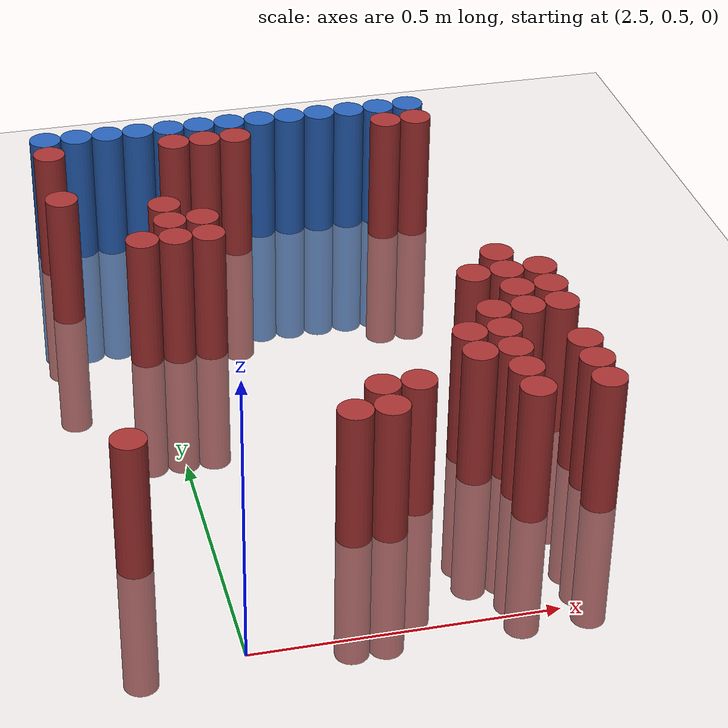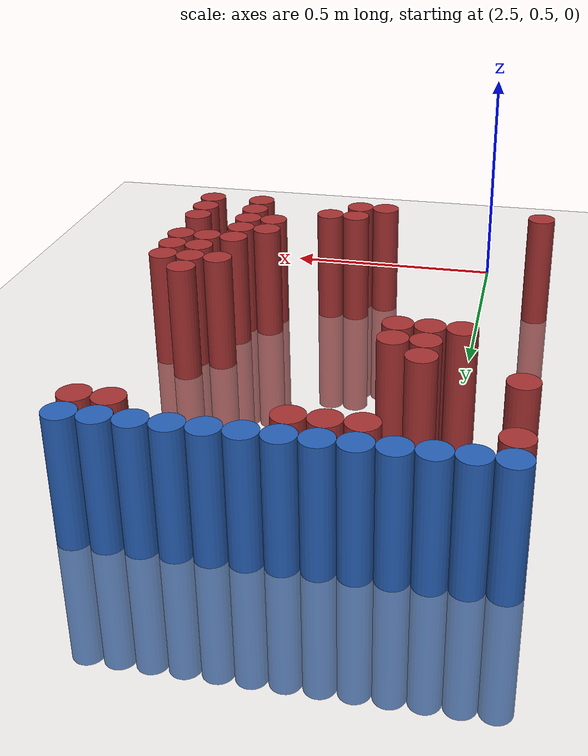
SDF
<sdf version="1.6">
 <world name="default">
  <model name="ground_plane">
   <static>1</static>
   <link name="link">
    <collision name="collision">
     <geometry><plane><normal>0 0 1</normal><size>100 100</size></plane></geometry>
     <surface><friction><ode><mu>100</mu><mu2>50</mu2></ode></friction></surface>
    </collision>
    <visual name="visual">
     <cast_shadows>0</cast_shadows>
     <geometry><plane><normal>0 0 1</normal><size>100 100</size></plane></geometry>
     <material>
      <script><uri>file://media/materials/scripts/gazebo.material</uri><name>Gazebo/Grey</name></script>
     </material>
    </visual>
   </link>
  </model>
  <model name="unit_cylinder_100">
   <static>1</static>
   <pose>2.370000 1.770000 0.000000 0.000000 0.000000 0.000000</pose>
   <link name="link">
    <inertial>
     <mass>1</mass>
     <inertia><ixx>0.145833</ixx><ixy>0</ixy><ixz>0</ixz><iyy>0.145833</iyy><iyz>0</iyz><izz>0.125</izz></inertia>
    </inertial>
    <collision name="collision">
     <geometry><cylinder><radius>0.030000</radius><length>0.5</length></cylinder></geometry>
    </collision>
    <visual name="visual">
     <geometry><cylinder><radius>0.030000</radius><length>0.5</length></cylinder></geometry>
     <material>
      <ambient>0.152000 0.379000 0.720000 1</ambient>
      <diffuse>0.152000 0.379000 0.720000 1</diffuse>
     </material>
     <material>
      <script><name>Gazebo/Grey</name><uri>file://media/materials/scripts/gazebo.material</uri></script>
     </material>
    </visual>
   </link>
  </model>
  <model name="unit_cylinder_101">
   <static>1</static>
   <pose>2.430000 1.770000 0.000000 0.000000 0.000000 0.000000</pose>
   <link name="link">
    <inertial>
     <mass>1</mass>
     <inertia><ixx>0.145833</ixx><ixy>0</ixy><ixz>0</ixz><iyy>0.145833</iyy><iyz>0</iyz><izz>0.125</izz></inertia>
    </inertial>
    <collision name="collision">
     <geometry><cylinder><radius>0.030000</radius><length>0.5</length></cylinder></geometry>
    </collision>
    <visual name="visual">
     <geometry><cylinder><radius>0.030000</radius><length>0.5</length></cylinder></geometry>
     <material>
      <ambient>0.152000 0.379000 0.720000 1</ambient>
      <diffuse>0.152000 0.379000 0.720000 1</diffuse>
     </material>
     <material>
      <script><name>Gazebo/Grey</name><uri>file://media/materials/scripts/gazebo.material</uri></script>
     </material>
    </visual>
   </link>
  </model>
  <model name="unit_cylinder_102">
   <static>1</static>
   <pose>2.490000 1.770000 0.000000 0.000000 0.000000 0.000000</pose>
   <link name="link">
    <inertial>
     <mass>1</mass>
     <inertia><ixx>0.145833</ixx><ixy>0</ixy><ixz>0</ixz><iyy>0.145833</iyy><iyz>0</iyz><izz>0.125</izz></inertia>
    </inertial>
    <collision name="collision">
     <geometry><cylinder><radius>0.030000</radius><length>0.5</length></cylinder></geometry>
    </collision>
    <visual name="visual">
     <geometry><cylinder><radius>0.030000</radius><length>0.5</length></cylinder></geometry>
     <material>
      <ambient>0.152000 0.379000 0.720000 1</ambient>
      <diffuse>0.152000 0.379000 0.720000 1</diffuse>
     </material>
     <material>
      <script><name>Gazebo/Grey</name><uri>file://media/materials/scripts/gazebo.material</uri></script>
     </material>
    </visual>
   </link>
  </model>
  <model name="unit_cylinder_103">
   <static>1</static>
   <pose>2.550000 1.770000 0.000000 0.000000 0.000000 0.000000</pose>
   <link name="link">
    <inertial>
     <mass>1</mass>
     <inertia><ixx>0.145833</ixx><ixy>0</ixy><ixz>0</ixz><iyy>0.145833</iyy><iyz>0</iyz><izz>0.125</izz></inertia>
    </inertial>
    <collision name="collision">
     <geometry><cylinder><radius>0.030000</radius><length>0.5</length></cylinder></geometry>
    </collision>
    <visual name="visual">
     <geometry><cylinder><radius>0.030000</radius><length>0.5</length></cylinder></geometry>
     <material>
      <ambient>0.152000 0.379000 0.720000 1</ambient>
      <diffuse>0.152000 0.379000 0.720000 1</diffuse>
     </material>
     <material>
      <script><name>Gazebo/Grey</name><uri>file://media/materials/scripts/gazebo.material</uri></script>
     </material>
    </visual>
   </link>
  </model>
  <model name="unit_cylinder_104">
   <static>1</static>
   <pose>2.610000 1.770000 0.000000 0.000000 0.000000 0.000000</pose>
   <link name="link">
    <inertial>
     <mass>1</mass>
     <inertia><ixx>0.145833</ixx><ixy>0</ixy><ixz>0</ixz><iyy>0.145833</iyy><iyz>0</iyz><izz>0.125</izz></inertia>
    </inertial>
    <collision name="collision">
     <geometry><cylinder><radius>0.030000</radius><length>0.5</length></cylinder></geometry>
    </collision>
    <visual name="visual">
     <geometry><cylinder><radius>0.030000</radius><length>0.5</length></cylinder></geometry>
     <material>
      <ambient>0.152000 0.379000 0.720000 1</ambient>
      <diffuse>0.152000 0.379000 0.720000 1</diffuse>
     </material>
     <material>
      <script><name>Gazebo/Grey</name><uri>file://media/materials/scripts/gazebo.material</uri></script>
     </material>
    </visual>
   </link>
  </model>
  <model name="unit_cylinder_105">
   <static>1</static>
   <pose>2.670000 1.770000 0.000000 0.000000 0.000000 0.000000</pose>
   <link name="link">
    <inertial>
     <mass>1</mass>
     <inertia><ixx>0.145833</ixx><ixy>0</ixy><ixz>0</ixz><iyy>0.145833</iyy><iyz>0</iyz><izz>0.125</izz></inertia>
    </inertial>
    <collision name="collision">
     <geometry><cylinder><radius>0.030000</radius><length>0.5</length></cylinder></geometry>
    </collision>
    <visual name="visual">
     <geometry><cylinder><radius>0.030000</radius><length>0.5</length></cylinder></geometry>
     <material>
      <ambient>0.152000 0.379000 0.720000 1</ambient>
      <diffuse>0.152000 0.379000 0.720000 1</diffuse>
     </material>
     <material>
      <script><name>Gazebo/Grey</name><uri>file://media/materials/scripts/gazebo.material</uri></script>
     </material>
    </visual>
   </link>
  </model>
  <model name="unit_cylinder_106">
   <static>1</static>
   <pose>2.730000 1.770000 0.000000 0.000000 0.000000 0.000000</pose>
   <link name="link">
    <inertial>
     <mass>1</mass>
     <inertia><ixx>0.145833</ixx><ixy>0</ixy><ixz>0</ixz><iyy>0.145833</iyy><iyz>0</iyz><izz>0.125</izz></inertia>
    </inertial>
    <collision name="collision">
     <geometry><cylinder><radius>0.030000</radius><length>0.5</length></cylinder></geometry>
    </collision>
    <visual name="visual">
     <geometry><cylinder><radius>0.030000</radius><length>0.5</length></cylinder></geometry>
     <material>
      <ambient>0.152000 0.379000 0.720000 1</ambient>
      <diffuse>0.152000 0.379000 0.720000 1</diffuse>
     </material>
     <material>
      <script><name>Gazebo/Grey</name><uri>file://media/materials/scripts/gazebo.material</uri></script>
     </material>
    </visual>
   </link>
  </model>
  <model name="unit_cylinder_107">
   <static>1</static>
   <pose>2.790000 1.770000 0.000000 0.000000 0.000000 0.000000</pose>
   <link name="link">
    <inertial>
     <mass>1</mass>
     <inertia><ixx>0.145833</ixx><ixy>0</ixy><ixz>0</ixz><iyy>0.145833</iyy><iyz>0</iyz><izz>0.125</izz></inertia>
    </inertial>
    <collision name="collision">
     <geometry><cylinder><radius>0.030000</radius><length>0.5</length></cylinder></geometry>
    </collision>
    <visual name="visual">
     <geometry><cylinder><radius>0.030000</radius><length>0.5</length></cylinder></geometry>
     <material>
      <ambient>0.152000 0.379000 0.720000 1</ambient>
      <diffuse>0.152000 0.379000 0.720000 1</diffuse>
     </material>
     <material>
      <script><name>Gazebo/Grey</name><uri>file://media/materials/scripts/gazebo.material</uri></script>
     </material>
    </visual>
   </link>
  </model>
  <model name="unit_cylinder_108">
   <static>1</static>
   <pose>2.850000 1.770000 0.000000 0.000000 0.000000 0.000000</pose>
   <link name="link">
    <inertial>
     <mass>1</mass>
     <inertia><ixx>0.145833</ixx><ixy>0</ixy><ixz>0</ixz><iyy>0.145833</iyy><iyz>0</iyz><izz>0.125</izz></inertia>
    </inertial>
    <collision name="collision">
     <geometry><cylinder><radius>0.030000</radius><length>0.5</length></cylinder></geometry>
    </collision>
    <visual name="visual">
     <geometry><cylinder><radius>0.030000</radius><length>0.5</length></cylinder></geometry>
     <material>
      <ambient>0.152000 0.379000 0.720000 1</ambient>
      <diffuse>0.152000 0.379000 0.720000 1</diffuse>
     </material>
     <material>
      <script><name>Gazebo/Grey</name><uri>file://media/materials/scripts/gazebo.material</uri></script>
     </material>
    </visual>
   </link>
  </model>
  <model name="unit_cylinder_109">
   <static>1</static>
   <pose>2.910000 1.770000 0.000000 0.000000 0.000000 0.000000</pose>
   <link name="link">
    <inertial>
     <mass>1</mass>
     <inertia><ixx>0.145833</ixx><ixy>0</ixy><ixz>0</ixz><iyy>0.145833</iyy><iyz>0</iyz><izz>0.125</izz></inertia>
    </inertial>
    <collision name="collision">
     <geometry><cylinder><radius>0.030000</radius><length>0.5</length></cylinder></geometry>
    </collision>
    <visual name="visual">
     <geometry><cylinder><radius>0.030000</radius><length>0.5</length></cylinder></geometry>
     <material>
      <ambient>0.152000 0.379000 0.720000 1</ambient>
      <diffuse>0.152000 0.379000 0.720000 1</diffuse>
     </material>
     <material>
      <script><name>Gazebo/Grey</name><uri>file://media/materials/scripts/gazebo.material</uri></script>
     </material>
    </visual>
   </link>
  </model>
  <model name="unit_cylinder_110">
   <static>1</static>
   <pose>2.970000 1.770000 0.000000 0.000000 0.000000 0.000000</pose>
   <link name="link">
    <inertial>
     <mass>1</mass>
     <inertia><ixx>0.145833</ixx><ixy>0</ixy><ixz>0</ixz><iyy>0.145833</iyy><iyz>0</iyz><izz>0.125</izz></inertia>
    </inertial>
    <collision name="collision">
     <geometry><cylinder><radius>0.030000</radius><length>0.5</length></cylinder></geometry>
    </collision>
    <visual name="visual">
     <geometry><cylinder><radius>0.030000</radius><length>0.5</length></cylinder></geometry>
     <material>
      <ambient>0.152000 0.379000 0.720000 1</ambient>
      <diffuse>0.152000 0.379000 0.720000 1</diffuse>
     </material>
     <material>
      <script><name>Gazebo/Grey</name><uri>file://media/materials/scripts/gazebo.material</uri></script>
     </material>
    </visual>
   </link>
  </model>
  <model name="unit_cylinder_111">
   <static>1</static>
   <pose>3.030000 1.770000 0.000000 0.000000 0.000000 0.000000</pose>
   <link name="link">
    <inertial>
     <mass>1</mass>
     <inertia><ixx>0.145833</ixx><ixy>0</ixy><ixz>0</ixz><iyy>0.145833</iyy><iyz>0</iyz><izz>0.125</izz></inertia>
    </inertial>
    <collision name="collision">
     <geometry><cylinder><radius>0.030000</radius><length>0.5</length></cylinder></geometry>
    </collision>
    <visual name="visual">
     <geometry><cylinder><radius>0.030000</radius><length>0.5</length></cylinder></geometry>
     <material>
      <ambient>0.152000 0.379000 0.720000 1</ambient>
      <diffuse>0.152000 0.379000 0.720000 1</diffuse>
     </material>
     <material>
      <script><name>Gazebo/Grey</name><uri>file://media/materials/scripts/gazebo.material</uri></script>
     </material>
    </visual>
   </link>
  </model>
  <model name="unit_cylinder_112">
   <static>1</static>
   <pose>3.090000 1.770000 0.000000 0.000000 0.000000 0.000000</pose>
   <link name="link">
    <inertial>
     <mass>1</mass>
     <inertia><ixx>0.145833</ixx><ixy>0</ixy><ixz>0</ixz><iyy>0.145833</iyy><iyz>0</iyz><izz>0.125</izz></inertia>
    </inertial>
    <collision name="collision">
     <geometry><cylinder><radius>0.030000</radius><length>0.5</length></cylinder></geometry>
    </collision>
    <visual name="visual">
     <geometry><cylinder><radius>0.030000</radius><length>0.5</length></cylinder></geometry>
     <material>
      <ambient>0.152000 0.379000 0.720000 1</ambient>
      <diffuse>0.152000 0.379000 0.720000 1</diffuse>
     </material>
     <material>
      <script><name>Gazebo/Grey</name><uri>file://media/materials/scripts/gazebo.material</uri></script>
     </material>
    </visual>
   </link>
  </model>
  <model name="unit_cylinder_129">
   <static>1</static>
   <pose>2.370000 1.710000 0.000000 0.000000 0.000000 0.000000</pose>
   <link name="link">
    <inertial>
     <mass>1</mass>
     <inertia><ixx>0.145833</ixx><ixy>0</ixy><ixz>0</ixz><iyy>0.145833</iyy><iyz>0</iyz><izz>0.125</izz></inertia>
    </inertial>
    <collision name="collision">
     <geometry><cylinder><radius>0.030000</radius><length>0.5</length></cylinder></geometry>
    </collision>
    <visual name="visual">
     <geometry><cylinder><radius>0.030000</radius><length>0.5</length></cylinder></geometry>
     <material>
      <ambient>0.648000 0.192000 0.192000 1</ambient>
      <diffuse>0.648000 0.192000 0.192000 1</diffuse>
     </material>
     <material>
      <script><name>Gazebo/Grey</name><uri>file://media/materials/scripts/gazebo.material</uri></script>
     </material>
    </visual>
   </link>
  </model>
  <model name="unit_cylinder_130">
   <static>1</static>
   <pose>2.610000 1.710000 0.000000 0.000000 0.000000 0.000000</pose>
   <link name="link">
    <inertial>
     <mass>1</mass>
     <inertia><ixx>0.145833</ixx><ixy>0</ixy><ixz>0</ixz><iyy>0.145833</iyy><iyz>0</iyz><izz>0.125</izz></inertia>
    </inertial>
    <collision name="collision">
     <geometry><cylinder><radius>0.030000</radius><length>0.5</length></cylinder></geometry>
    </collision>
    <visual name="visual">
     <geometry><cylinder><radius>0.030000</radius><length>0.5</length></cylinder></geometry>
     <material>
      <ambient>0.648000 0.192000 0.192000 1</ambient>
      <diffuse>0.648000 0.192000 0.192000 1</diffuse>
     </material>
     <material>
      <script><name>Gazebo/Grey</name><uri>file://media/materials/scripts/gazebo.material</uri></script>
     </material>
    </visual>
   </link>
  </model>
  <model name="unit_cylinder_131">
   <static>1</static>
   <pose>2.670000 1.710000 0.000000 0.000000 0.000000 0.000000</pose>
   <link name="link">
    <inertial>
     <mass>1</mass>
     <inertia><ixx>0.145833</ixx><ixy>0</ixy><ixz>0</ixz><iyy>0.145833</iyy><iyz>0</iyz><izz>0.125</izz></inertia>
    </inertial>
    <collision name="collision">
     <geometry><cylinder><radius>0.030000</radius><length>0.5</length></cylinder></geometry>
    </collision>
    <visual name="visual">
     <geometry><cylinder><radius>0.030000</radius><length>0.5</length></cylinder></geometry>
     <material>
      <ambient>0.648000 0.192000 0.192000 1</ambient>
      <diffuse>0.648000 0.192000 0.192000 1</diffuse>
     </material>
     <material>
      <script><name>Gazebo/Grey</name><uri>file://media/materials/scripts/gazebo.material</uri></script>
     </material>
    </visual>
   </link>
  </model>
  <model name="unit_cylinder_132">
   <static>1</static>
   <pose>2.730000 1.710000 0.000000 0.000000 0.000000 0.000000</pose>
   <link name="link">
    <inertial>
     <mass>1</mass>
     <inertia><ixx>0.145833</ixx><ixy>0</ixy><ixz>0</ixz><iyy>0.145833</iyy><iyz>0</iyz><izz>0.125</izz></inertia>
    </inertial>
    <collision name="collision">
     <geometry><cylinder><radius>0.030000</radius><length>0.5</length></cylinder></geometry>
    </collision>
    <visual name="visual">
     <geometry><cylinder><radius>0.030000</radius><length>0.5</length></cylinder></geometry>
     <material>
      <ambient>0.648000 0.192000 0.192000 1</ambient>
      <diffuse>0.648000 0.192000 0.192000 1</diffuse>
     </material>
     <material>
      <script><name>Gazebo/Grey</name><uri>file://media/materials/scripts/gazebo.material</uri></script>
     </material>
    </visual>
   </link>
  </model>
  <model name="unit_cylinder_133">
   <static>1</static>
   <pose>3.030000 1.710000 0.000000 0.000000 0.000000 0.000000</pose>
   <link name="link">
    <inertial>
     <mass>1</mass>
     <inertia><ixx>0.145833</ixx><ixy>0</ixy><ixz>0</ixz><iyy>0.145833</iyy><iyz>0</iyz><izz>0.125</izz></inertia>
    </inertial>
    <collision name="collision">
     <geometry><cylinder><radius>0.030000</radius><length>0.5</length></cylinder></geometry>
    </collision>
    <visual name="visual">
     <geometry><cylinder><radius>0.030000</radius><length>0.5</length></cylinder></geometry>
     <material>
      <ambient>0.648000 0.192000 0.192000 1</ambient>
      <diffuse>0.648000 0.192000 0.192000 1</diffuse>
     </material>
     <material>
      <script><name>Gazebo/Grey</name><uri>file://media/materials/scripts/gazebo.material</uri></script>
     </material>
    </visual>
   </link>
  </model>
  <model name="unit_cylinder_134">
   <static>1</static>
   <pose>3.090000 1.710000 0.000000 0.000000 0.000000 0.000000</pose>
   <link name="link">
    <inertial>
     <mass>1</mass>
     <inertia><ixx>0.145833</ixx><ixy>0</ixy><ixz>0</ixz><iyy>0.145833</iyy><iyz>0</iyz><izz>0.125</izz></inertia>
    </inertial>
    <collision name="collision">
     <geometry><cylinder><radius>0.030000</radius><length>0.5</length></cylinder></geometry>
    </collision>
    <visual name="visual">
     <geometry><cylinder><radius>0.030000</radius><length>0.5</length></cylinder></geometry>
     <material>
      <ambient>0.648000 0.192000 0.192000 1</ambient>
      <diffuse>0.648000 0.192000 0.192000 1</diffuse>
     </material>
     <material>
      <script><name>Gazebo/Grey</name><uri>file://media/materials/scripts/gazebo.material</uri></script>
     </material>
    </visual>
   </link>
  </model>
  <model name="unit_cylinder_150">
   <static>1</static>
   <pose>2.370000 1.530000 0.000000 0.000000 0.000000 0.000000</pose>
   <link name="link">
    <inertial>
     <mass>1</mass>
     <inertia><ixx>0.145833</ixx><ixy>0</ixy><ixz>0</ixz><iyy>0.145833</iyy><iyz>0</iyz><izz>0.125</izz></inertia>
    </inertial>
    <collision name="collision">
     <geometry><cylinder><radius>0.030000</radius><length>0.5</length></cylinder></geometry>
    </collision>
    <visual name="visual">
     <geometry><cylinder><radius>0.030000</radius><length>0.5</length></cylinder></geometry>
     <material>
      <ambient>0.648000 0.192000 0.192000 1</ambient>
      <diffuse>0.648000 0.192000 0.192000 1</diffuse>
     </material>
     <material>
      <script><name>Gazebo/Grey</name><uri>file://media/materials/scripts/gazebo.material</uri></script>
     </material>
    </visual>
   </link>
  </model>
  <model name="unit_cylinder_152">
   <static>1</static>
   <pose>2.550000 1.470000 0.000000 0.000000 0.000000 0.000000</pose>
   <link name="link">
    <inertial>
     <mass>1</mass>
     <inertia><ixx>0.145833</ixx><ixy>0</ixy><ixz>0</ixz><iyy>0.145833</iyy><iyz>0</iyz><izz>0.125</izz></inertia>
    </inertial>
    <collision name="collision">
     <geometry><cylinder><radius>0.030000</radius><length>0.5</length></cylinder></geometry>
    </collision>
    <visual name="visual">
     <geometry><cylinder><radius>0.030000</radius><length>0.5</length></cylinder></geometry>
     <material>
      <ambient>0.648000 0.192000 0.192000 1</ambient>
      <diffuse>0.648000 0.192000 0.192000 1</diffuse>
     </material>
     <material>
      <script><name>Gazebo/Grey</name><uri>file://media/materials/scripts/gazebo.material</uri></script>
     </material>
    </visual>
   </link>
  </model>
  <model name="unit_cylinder_154">
   <static>1</static>
   <pose>2.550000 1.410000 0.000000 0.000000 0.000000 0.000000</pose>
   <link name="link">
    <inertial>
     <mass>1</mass>
     <inertia><ixx>0.145833</ixx><ixy>0</ixy><ixz>0</ixz><iyy>0.145833</iyy><iyz>0</iyz><izz>0.125</izz></inertia>
    </inertial>
    <collision name="collision">
     <geometry><cylinder><radius>0.030000</radius><length>0.5</length></cylinder></geometry>
    </collision>
    <visual name="visual">
     <geometry><cylinder><radius>0.030000</radius><length>0.5</length></cylinder></geometry>
     <material>
      <ambient>0.648000 0.192000 0.192000 1</ambient>
      <diffuse>0.648000 0.192000 0.192000 1</diffuse>
     </material>
     <material>
      <script><name>Gazebo/Grey</name><uri>file://media/materials/scripts/gazebo.material</uri></script>
     </material>
    </visual>
   </link>
  </model>
  <model name="unit_cylinder_155">
   <static>1</static>
   <pose>2.610000 1.410000 0.000000 0.000000 0.000000 0.000000</pose>
   <link name="link">
    <inertial>
     <mass>1</mass>
     <inertia><ixx>0.145833</ixx><ixy>0</ixy><ixz>0</ixz><iyy>0.145833</iyy><iyz>0</iyz><izz>0.125</izz></inertia>
    </inertial>
    <collision name="collision">
     <geometry><cylinder><radius>0.030000</radius><length>0.5</length></cylinder></geometry>
    </collision>
    <visual name="visual">
     <geometry><cylinder><radius>0.030000</radius><length>0.5</length></cylinder></geometry>
     <material>
      <ambient>0.648000 0.192000 0.192000 1</ambient>
      <diffuse>0.648000 0.192000 0.192000 1</diffuse>
     </material>
     <material>
      <script><name>Gazebo/Grey</name><uri>file://media/materials/scripts/gazebo.material</uri></script>
     </material>
    </visual>
   </link>
  </model>
  <model name="unit_cylinder_159">
   <static>1</static>
   <pose>2.490000 1.350000 0.000000 0.000000 0.000000 0.000000</pose>
   <link name="link">
    <inertial>
     <mass>1</mass>
     <inertia><ixx>0.145833</ixx><ixy>0</ixy><ixz>0</ixz><iyy>0.145833</iyy><iyz>0</iyz><izz>0.125</izz></inertia>
    </inertial>
    <collision name="collision">
     <geometry><cylinder><radius>0.030000</radius><length>0.5</length></cylinder></geometry>
    </collision>
    <visual name="visual">
     <geometry><cylinder><radius>0.030000</radius><length>0.5</length></cylinder></geometry>
     <material>
      <ambient>0.648000 0.192000 0.192000 1</ambient>
      <diffuse>0.648000 0.192000 0.192000 1</diffuse>
     </material>
     <material>
      <script><name>Gazebo/Grey</name><uri>file://media/materials/scripts/gazebo.material</uri></script>
     </material>
    </visual>
   </link>
  </model>
  <model name="unit_cylinder_160">
   <static>1</static>
   <pose>2.550000 1.350000 0.000000 0.000000 0.000000 0.000000</pose>
   <link name="link">
    <inertial>
     <mass>1</mass>
     <inertia><ixx>0.145833</ixx><ixy>0</ixy><ixz>0</ixz><iyy>0.145833</iyy><iyz>0</iyz><izz>0.125</izz></inertia>
    </inertial>
    <collision name="collision">
     <geometry><cylinder><radius>0.030000</radius><length>0.5</length></cylinder></geometry>
    </collision>
    <visual name="visual">
     <geometry><cylinder><radius>0.030000</radius><length>0.5</length></cylinder></geometry>
     <material>
      <ambient>0.648000 0.192000 0.192000 1</ambient>
      <diffuse>0.648000 0.192000 0.192000 1</diffuse>
     </material>
     <material>
      <script><name>Gazebo/Grey</name><uri>file://media/materials/scripts/gazebo.material</uri></script>
     </material>
    </visual>
   </link>
  </model>
  <model name="unit_cylinder_161">
   <static>1</static>
   <pose>2.610000 1.350000 0.000000 0.000000 0.000000 0.000000</pose>
   <link name="link">
    <inertial>
     <mass>1</mass>
     <inertia><ixx>0.145833</ixx><ixy>0</ixy><ixz>0</ixz><iyy>0.145833</iyy><iyz>0</iyz><izz>0.125</izz></inertia>
    </inertial>
    <collision name="collision">
     <geometry><cylinder><radius>0.030000</radius><length>0.5</length></cylinder></geometry>
    </collision>
    <visual name="visual">
     <geometry><cylinder><radius>0.030000</radius><length>0.5</length></cylinder></geometry>
     <material>
      <ambient>0.648000 0.192000 0.192000 1</ambient>
      <diffuse>0.648000 0.192000 0.192000 1</diffuse>
     </material>
     <material>
      <script><name>Gazebo/Grey</name><uri>file://media/materials/scripts/gazebo.material</uri></script>
     </material>
    </visual>
   </link>
  </model>
  <model name="unit_cylinder_178">
   <static>1</static>
   <pose>3.090000 1.170000 0.000000 0.000000 0.000000 0.000000</pose>
   <link name="link">
    <inertial>
     <mass>1</mass>
     <inertia><ixx>0.145833</ixx><ixy>0</ixy><ixz>0</ixz><iyy>0.145833</iyy><iyz>0</iyz><izz>0.125</izz></inertia>
    </inertial>
    <collision name="collision">
     <geometry><cylinder><radius>0.030000</radius><length>0.5</length></cylinder></geometry>
    </collision>
    <visual name="visual">
     <geometry><cylinder><radius>0.030000</radius><length>0.5</length></cylinder></geometry>
     <material>
      <ambient>0.648000 0.192000 0.192000 1</ambient>
      <diffuse>0.648000 0.192000 0.192000 1</diffuse>
     </material>
     <material>
      <script><name>Gazebo/Grey</name><uri>file://media/materials/scripts/gazebo.material</uri></script>
     </material>
    </visual>
   </link>
  </model>
  <model name="unit_cylinder_182">
   <static>1</static>
   <pose>3.030000 1.110000 0.000000 0.000000 0.000000 0.000000</pose>
   <link name="link">
    <inertial>
     <mass>1</mass>
     <inertia><ixx>0.145833</ixx><ixy>0</ixy><ixz>0</ixz><iyy>0.145833</iyy><iyz>0</iyz><izz>0.125</izz></inertia>
    </inertial>
    <collision name="collision">
     <geometry><cylinder><radius>0.030000</radius><length>0.5</length></cylinder></geometry>
    </collision>
    <visual name="visual">
     <geometry><cylinder><radius>0.030000</radius><length>0.5</length></cylinder></geometry>
     <material>
      <ambient>0.648000 0.192000 0.192000 1</ambient>
      <diffuse>0.648000 0.192000 0.192000 1</diffuse>
     </material>
     <material>
      <script><name>Gazebo/Grey</name><uri>file://media/materials/scripts/gazebo.material</uri></script>
     </material>
    </visual>
   </link>
  </model>
  <model name="unit_cylinder_183">
   <static>1</static>
   <pose>3.090000 1.110000 0.000000 0.000000 0.000000 0.000000</pose>
   <link name="link">
    <inertial>
     <mass>1</mass>
     <inertia><ixx>0.145833</ixx><ixy>0</ixy><ixz>0</ixz><iyy>0.145833</iyy><iyz>0</iyz><izz>0.125</izz></inertia>
    </inertial>
    <collision name="collision">
     <geometry><cylinder><radius>0.030000</radius><length>0.5</length></cylinder></geometry>
    </collision>
    <visual name="visual">
     <geometry><cylinder><radius>0.030000</radius><length>0.5</length></cylinder></geometry>
     <material>
      <ambient>0.648000 0.192000 0.192000 1</ambient>
      <diffuse>0.648000 0.192000 0.192000 1</diffuse>
     </material>
     <material>
      <script><name>Gazebo/Grey</name><uri>file://media/materials/scripts/gazebo.material</uri></script>
     </material>
    </visual>
   </link>
  </model>
  <model name="unit_cylinder_184">
   <static>1</static>
   <pose>3.150000 1.110000 0.000000 0.000000 0.000000 0.000000</pose>
   <link name="link">
    <inertial>
     <mass>1</mass>
     <inertia><ixx>0.145833</ixx><ixy>0</ixy><ixz>0</ixz><iyy>0.145833</iyy><iyz>0</iyz><izz>0.125</izz></inertia>
    </inertial>
    <collision name="collision">
     <geometry><cylinder><radius>0.030000</radius><length>0.5</length></cylinder></geometry>
    </collision>
    <visual name="visual">
     <geometry><cylinder><radius>0.030000</radius><length>0.5</length></cylinder></geometry>
     <material>
      <ambient>0.648000 0.192000 0.192000 1</ambient>
      <diffuse>0.648000 0.192000 0.192000 1</diffuse>
     </material>
     <material>
      <script><name>Gazebo/Grey</name><uri>file://media/materials/scripts/gazebo.material</uri></script>
     </material>
    </visual>
   </link>
  </model>
  <model name="unit_cylinder_185">
   <static>1</static>
   <pose>3.090000 1.050000 0.000000 0.000000 0.000000 0.000000</pose>
   <link name="link">
    <inertial>
     <mass>1</mass>
     <inertia><ixx>0.145833</ixx><ixy>0</ixy><ixz>0</ixz><iyy>0.145833</iyy><iyz>0</iyz><izz>0.125</izz></inertia>
    </inertial>
    <collision name="collision">
     <geometry><cylinder><radius>0.030000</radius><length>0.5</length></cylinder></geometry>
    </collision>
    <visual name="visual">
     <geometry><cylinder><radius>0.030000</radius><length>0.5</length></cylinder></geometry>
     <material>
      <ambient>0.648000 0.192000 0.192000 1</ambient>
      <diffuse>0.648000 0.192000 0.192000 1</diffuse>
     </material>
     <material>
      <script><name>Gazebo/Grey</name><uri>file://media/materials/scripts/gazebo.material</uri></script>
     </material>
    </visual>
   </link>
  </model>
  <model name="unit_cylinder_186">
   <static>1</static>
   <pose>3.150000 1.050000 0.000000 0.000000 0.000000 0.000000</pose>
   <link name="link">
    <inertial>
     <mass>1</mass>
     <inertia><ixx>0.145833</ixx><ixy>0</ixy><ixz>0</ixz><iyy>0.145833</iyy><iyz>0</iyz><izz>0.125</izz></inertia>
    </inertial>
    <collision name="collision">
     <geometry><cylinder><radius>0.030000</radius><length>0.5</length></cylinder></geometry>
    </collision>
    <visual name="visual">
     <geometry><cylinder><radius>0.030000</radius><length>0.5</length></cylinder></geometry>
     <material>
      <ambient>0.648000 0.192000 0.192000 1</ambient>
      <diffuse>0.648000 0.192000 0.192000 1</diffuse>
     </material>
     <material>
      <script><name>Gazebo/Grey</name><uri>file://media/materials/scripts/gazebo.material</uri></script>
     </material>
    </visual>
   </link>
  </model>
  <model name="unit_cylinder_188">
   <static>1</static>
   <pose>3.030000 0.990000 0.000000 0.000000 0.000000 0.000000</pose>
   <link name="link">
    <inertial>
     <mass>1</mass>
     <inertia><ixx>0.145833</ixx><ixy>0</ixy><ixz>0</ixz><iyy>0.145833</iyy><iyz>0</iyz><izz>0.125</izz></inertia>
    </inertial>
    <collision name="collision">
     <geometry><cylinder><radius>0.030000</radius><length>0.5</length></cylinder></geometry>
    </collision>
    <visual name="visual">
     <geometry><cylinder><radius>0.030000</radius><length>0.5</length></cylinder></geometry>
     <material>
      <ambient>0.648000 0.192000 0.192000 1</ambient>
      <diffuse>0.648000 0.192000 0.192000 1</diffuse>
     </material>
     <material>
      <script><name>Gazebo/Grey</name><uri>file://media/materials/scripts/gazebo.material</uri></script>
     </material>
    </visual>
   </link>
  </model>
  <model name="unit_cylinder_189">
   <static>1</static>
   <pose>3.090000 0.990000 0.000000 0.000000 0.000000 0.000000</pose>
   <link name="link">
    <inertial>
     <mass>1</mass>
     <inertia><ixx>0.145833</ixx><ixy>0</ixy><ixz>0</ixz><iyy>0.145833</iyy><iyz>0</iyz><izz>0.125</izz></inertia>
    </inertial>
    <collision name="collision">
     <geometry><cylinder><radius>0.030000</radius><length>0.5</length></cylinder></geometry>
    </collision>
    <visual name="visual">
     <geometry><cylinder><radius>0.030000</radius><length>0.5</length></cylinder></geometry>
     <material>
      <ambient>0.648000 0.192000 0.192000 1</ambient>
      <diffuse>0.648000 0.192000 0.192000 1</diffuse>
     </material>
     <material>
      <script><name>Gazebo/Grey</name><uri>file://media/materials/scripts/gazebo.material</uri></script>
     </material>
    </visual>
   </link>
  </model>
  <model name="unit_cylinder_190">
   <static>1</static>
   <pose>3.150000 0.990000 0.000000 0.000000 0.000000 0.000000</pose>
   <link name="link">
    <inertial>
     <mass>1</mass>
     <inertia><ixx>0.145833</ixx><ixy>0</ixy><ixz>0</ixz><iyy>0.145833</iyy><iyz>0</iyz><izz>0.125</izz></inertia>
    </inertial>
    <collision name="collision">
     <geometry><cylinder><radius>0.030000</radius><length>0.5</length></cylinder></geometry>
    </collision>
    <visual name="visual">
     <geometry><cylinder><radius>0.030000</radius><length>0.5</length></cylinder></geometry>
     <material>
      <ambient>0.648000 0.192000 0.192000 1</ambient>
      <diffuse>0.648000 0.192000 0.192000 1</diffuse>
     </material>
     <material>
      <script><name>Gazebo/Grey</name><uri>file://media/materials/scripts/gazebo.material</uri></script>
     </material>
    </visual>
   </link>
  </model>
  <model name="unit_cylinder_197">
   <static>1</static>
   <pose>2.970000 0.930000 0.000000 0.000000 0.000000 0.000000</pose>
   <link name="link">
    <inertial>
     <mass>1</mass>
     <inertia><ixx>0.145833</ixx><ixy>0</ixy><ixz>0</ixz><iyy>0.145833</iyy><iyz>0</iyz><izz>0.125</izz></inertia>
    </inertial>
    <collision name="collision">
     <geometry><cylinder><radius>0.030000</radius><length>0.5</length></cylinder></geometry>
    </collision>
    <visual name="visual">
     <geometry><cylinder><radius>0.030000</radius><length>0.5</length></cylinder></geometry>
     <material>
      <ambient>0.648000 0.192000 0.192000 1</ambient>
      <diffuse>0.648000 0.192000 0.192000 1</diffuse>
     </material>
     <material>
      <script><name>Gazebo/Grey</name><uri>file://media/materials/scripts/gazebo.material</uri></script>
     </material>
    </visual>
   </link>
  </model>
  <model name="unit_cylinder_198">
   <static>1</static>
   <pose>3.030000 0.930000 0.000000 0.000000 0.000000 0.000000</pose>
   <link name="link">
    <inertial>
     <mass>1</mass>
     <inertia><ixx>0.145833</ixx><ixy>0</ixy><ixz>0</ixz><iyy>0.145833</iyy><iyz>0</iyz><izz>0.125</izz></inertia>
    </inertial>
    <collision name="collision">
     <geometry><cylinder><radius>0.030000</radius><length>0.5</length></cylinder></geometry>
    </collision>
    <visual name="visual">
     <geometry><cylinder><radius>0.030000</radius><length>0.5</length></cylinder></geometry>
     <material>
      <ambient>0.648000 0.192000 0.192000 1</ambient>
      <diffuse>0.648000 0.192000 0.192000 1</diffuse>
     </material>
     <material>
      <script><name>Gazebo/Grey</name><uri>file://media/materials/scripts/gazebo.material</uri></script>
     </material>
    </visual>
   </link>
  </model>
  <model name="unit_cylinder_208">
   <static>1</static>
   <pose>2.970000 0.870000 0.000000 0.000000 0.000000 0.000000</pose>
   <link name="link">
    <inertial>
     <mass>1</mass>
     <inertia><ixx>0.145833</ixx><ixy>0</ixy><ixz>0</ixz><iyy>0.145833</iyy><iyz>0</iyz><izz>0.125</izz></inertia>
    </inertial>
    <collision name="collision">
     <geometry><cylinder><radius>0.030000</radius><length>0.5</length></cylinder></geometry>
    </collision>
    <visual name="visual">
     <geometry><cylinder><radius>0.030000</radius><length>0.5</length></cylinder></geometry>
     <material>
      <ambient>0.648000 0.192000 0.192000 1</ambient>
      <diffuse>0.648000 0.192000 0.192000 1</diffuse>
     </material>
     <material>
      <script><name>Gazebo/Grey</name><uri>file://media/materials/scripts/gazebo.material</uri></script>
     </material>
    </visual>
   </link>
  </model>
  <model name="unit_cylinder_209">
   <static>1</static>
   <pose>3.030000 0.870000 0.000000 0.000000 0.000000 0.000000</pose>
   <link name="link">
    <inertial>
     <mass>1</mass>
     <inertia><ixx>0.145833</ixx><ixy>0</ixy><ixz>0</ixz><iyy>0.145833</iyy><iyz>0</iyz><izz>0.125</izz></inertia>
    </inertial>
    <collision name="collision">
     <geometry><cylinder><radius>0.030000</radius><length>0.5</length></cylinder></geometry>
    </collision>
    <visual name="visual">
     <geometry><cylinder><radius>0.030000</radius><length>0.5</length></cylinder></geometry>
     <material>
      <ambient>0.648000 0.192000 0.192000 1</ambient>
      <diffuse>0.648000 0.192000 0.192000 1</diffuse>
     </material>
     <material>
      <script><name>Gazebo/Grey</name><uri>file://media/materials/scripts/gazebo.material</uri></script>
     </material>
    </visual>
   </link>
  </model>
  <model name="unit_cylinder_210">
   <static>1</static>
   <pose>3.150000 0.870000 0.000000 0.000000 0.000000 0.000000</pose>
   <link name="link">
    <inertial>
     <mass>1</mass>
     <inertia><ixx>0.145833</ixx><ixy>0</ixy><ixz>0</ixz><iyy>0.145833</iyy><iyz>0</iyz><izz>0.125</izz></inertia>
    </inertial>
    <collision name="collision">
     <geometry><cylinder><radius>0.030000</radius><length>0.5</length></cylinder></geometry>
    </collision>
    <visual name="visual">
     <geometry><cylinder><radius>0.030000</radius><length>0.5</length></cylinder></geometry>
     <material>
      <ambient>0.648000 0.192000 0.192000 1</ambient>
      <diffuse>0.648000 0.192000 0.192000 1</diffuse>
     </material>
     <material>
      <script><name>Gazebo/Grey</name><uri>file://media/materials/scripts/gazebo.material</uri></script>
     </material>
    </visual>
   </link>
  </model>
  <model name="unit_cylinder_214">
   <static>1</static>
   <pose>2.790000 0.810000 0.000000 0.000000 0.000000 0.000000</pose>
   <link name="link">
    <inertial>
     <mass>1</mass>
     <inertia><ixx>0.145833</ixx><ixy>0</ixy><ixz>0</ixz><iyy>0.145833</iyy><iyz>0</iyz><izz>0.125</izz></inertia>
    </inertial>
    <collision name="collision">
     <geometry><cylinder><radius>0.030000</radius><length>0.5</length></cylinder></geometry>
    </collision>
    <visual name="visual">
     <geometry><cylinder><radius>0.030000</radius><length>0.5</length></cylinder></geometry>
     <material>
      <ambient>0.648000 0.192000 0.192000 1</ambient>
      <diffuse>0.648000 0.192000 0.192000 1</diffuse>
     </material>
     <material>
      <script><name>Gazebo/Grey</name><uri>file://media/materials/scripts/gazebo.material</uri></script>
     </material>
    </visual>
   </link>
  </model>
  <model name="unit_cylinder_215">
   <static>1</static>
   <pose>2.850000 0.810000 0.000000 0.000000 0.000000 0.000000</pose>
   <link name="link">
    <inertial>
     <mass>1</mass>
     <inertia><ixx>0.145833</ixx><ixy>0</ixy><ixz>0</ixz><iyy>0.145833</iyy><iyz>0</iyz><izz>0.125</izz></inertia>
    </inertial>
    <collision name="collision">
     <geometry><cylinder><radius>0.030000</radius><length>0.5</length></cylinder></geometry>
    </collision>
    <visual name="visual">
     <geometry><cylinder><radius>0.030000</radius><length>0.5</length></cylinder></geometry>
     <material>
      <ambient>0.648000 0.192000 0.192000 1</ambient>
      <diffuse>0.648000 0.192000 0.192000 1</diffuse>
     </material>
     <material>
      <script><name>Gazebo/Grey</name><uri>file://media/materials/scripts/gazebo.material</uri></script>
     </material>
    </visual>
   </link>
  </model>
  <model name="unit_cylinder_216">
   <static>1</static>
   <pose>3.030000 0.810000 0.000000 0.000000 0.000000 0.000000</pose>
   <link name="link">
    <inertial>
     <mass>1</mass>
     <inertia><ixx>0.145833</ixx><ixy>0</ixy><ixz>0</ixz><iyy>0.145833</iyy><iyz>0</iyz><izz>0.125</izz></inertia>
    </inertial>
    <collision name="collision">
     <geometry><cylinder><radius>0.030000</radius><length>0.5</length></cylinder></geometry>
    </collision>
    <visual name="visual">
     <geometry><cylinder><radius>0.030000</radius><length>0.5</length></cylinder></geometry>
     <material>
      <ambient>0.648000 0.192000 0.192000 1</ambient>
      <diffuse>0.648000 0.192000 0.192000 1</diffuse>
     </material>
     <material>
      <script><name>Gazebo/Grey</name><uri>file://media/materials/scripts/gazebo.material</uri></script>
     </material>
    </visual>
   </link>
  </model>
  <model name="unit_cylinder_217">
   <static>1</static>
   <pose>3.150000 0.810000 0.000000 0.000000 0.000000 0.000000</pose>
   <link name="link">
    <inertial>
     <mass>1</mass>
     <inertia><ixx>0.145833</ixx><ixy>0</ixy><ixz>0</ixz><iyy>0.145833</iyy><iyz>0</iyz><izz>0.125</izz></inertia>
    </inertial>
    <collision name="collision">
     <geometry><cylinder><radius>0.030000</radius><length>0.5</length></cylinder></geometry>
    </collision>
    <visual name="visual">
     <geometry><cylinder><radius>0.030000</radius><length>0.5</length></cylinder></geometry>
     <material>
      <ambient>0.648000 0.192000 0.192000 1</ambient>
      <diffuse>0.648000 0.192000 0.192000 1</diffuse>
     </material>
     <material>
      <script><name>Gazebo/Grey</name><uri>file://media/materials/scripts/gazebo.material</uri></script>
     </material>
    </visual>
   </link>
  </model>
  <model name="unit_cylinder_220">
   <static>1</static>
   <pose>2.370000 0.750000 0.000000 0.000000 0.000000 0.000000</pose>
   <link name="link">
    <inertial>
     <mass>1</mass>
     <inertia><ixx>0.145833</ixx><ixy>0</ixy><ixz>0</ixz><iyy>0.145833</iyy><iyz>0</iyz><izz>0.125</izz></inertia>
    </inertial>
    <collision name="collision">
     <geometry><cylinder><radius>0.030000</radius><length>0.5</length></cylinder></geometry>
    </collision>
    <visual name="visual">
     <geometry><cylinder><radius>0.030000</radius><length>0.5</length></cylinder></geometry>
     <material>
      <ambient>0.648000 0.192000 0.192000 1</ambient>
      <diffuse>0.648000 0.192000 0.192000 1</diffuse>
     </material>
     <material>
      <script><name>Gazebo/Grey</name><uri>file://media/materials/scripts/gazebo.material</uri></script>
     </material>
    </visual>
   </link>
  </model>
  <model name="unit_cylinder_221">
   <static>1</static>
   <pose>2.730000 0.750000 0.000000 0.000000 0.000000 0.000000</pose>
   <link name="link">
    <inertial>
     <mass>1</mass>
     <inertia><ixx>0.145833</ixx><ixy>0</ixy><ixz>0</ixz><iyy>0.145833</iyy><iyz>0</iyz><izz>0.125</izz></inertia>
    </inertial>
    <collision name="collision">
     <geometry><cylinder><radius>0.030000</radius><length>0.5</length></cylinder></geometry>
    </collision>
    <visual name="visual">
     <geometry><cylinder><radius>0.030000</radius><length>0.5</length></cylinder></geometry>
     <material>
      <ambient>0.648000 0.192000 0.192000 1</ambient>
      <diffuse>0.648000 0.192000 0.192000 1</diffuse>
     </material>
     <material>
      <script><name>Gazebo/Grey</name><uri>file://media/materials/scripts/gazebo.material</uri></script>
     </material>
    </visual>
   </link>
  </model>
  <model name="unit_cylinder_222">
   <static>1</static>
   <pose>2.790000 0.750000 0.000000 0.000000 0.000000 0.000000</pose>
   <link name="link">
    <inertial>
     <mass>1</mass>
     <inertia><ixx>0.145833</ixx><ixy>0</ixy><ixz>0</ixz><iyy>0.145833</iyy><iyz>0</iyz><izz>0.125</izz></inertia>
    </inertial>
    <collision name="collision">
     <geometry><cylinder><radius>0.030000</radius><length>0.5</length></cylinder></geometry>
    </collision>
    <visual name="visual">
     <geometry><cylinder><radius>0.030000</radius><length>0.5</length></cylinder></geometry>
     <material>
      <ambient>0.648000 0.192000 0.192000 1</ambient>
      <diffuse>0.648000 0.192000 0.192000 1</diffuse>
     </material>
     <material>
      <script><name>Gazebo/Grey</name><uri>file://media/materials/scripts/gazebo.material</uri></script>
     </material>
    </visual>
   </link>
  </model>
  <model name="unit_cylinder_223">
   <static>1</static>
   <pose>3.030000 0.750000 0.000000 0.000000 0.000000 0.000000</pose>
   <link name="link">
    <inertial>
     <mass>1</mass>
     <inertia><ixx>0.145833</ixx><ixy>0</ixy><ixz>0</ixz><iyy>0.145833</iyy><iyz>0</iyz><izz>0.125</izz></inertia>
    </inertial>
    <collision name="collision">
     <geometry><cylinder><radius>0.030000</radius><length>0.5</length></cylinder></geometry>
    </collision>
    <visual name="visual">
     <geometry><cylinder><radius>0.030000</radius><length>0.5</length></cylinder></geometry>
     <material>
      <ambient>0.648000 0.192000 0.192000 1</ambient>
      <diffuse>0.648000 0.192000 0.192000 1</diffuse>
     </material>
     <material>
      <script><name>Gazebo/Grey</name><uri>file://media/materials/scripts/gazebo.material</uri></script>
     </material>
    </visual>
   </link>
  </model>
  <model name="unit_cylinder_224">
   <static>1</static>
   <pose>3.150000 0.750000 0.000000 0.000000 0.000000 0.000000</pose>
   <link name="link">
    <inertial>
     <mass>1</mass>
     <inertia><ixx>0.145833</ixx><ixy>0</ixy><ixz>0</ixz><iyy>0.145833</iyy><iyz>0</iyz><izz>0.125</izz></inertia>
    </inertial>
    <collision name="collision">
     <geometry><cylinder><radius>0.030000</radius><length>0.5</length></cylinder></geometry>
    </collision>
    <visual name="visual">
     <geometry><cylinder><radius>0.030000</radius><length>0.5</length></cylinder></geometry>
     <material>
      <ambient>0.648000 0.192000 0.192000 1</ambient>
      <diffuse>0.648000 0.192000 0.192000 1</diffuse>
     </material>
     <material>
      <script><name>Gazebo/Grey</name><uri>file://media/materials/scripts/gazebo.material</uri></script>
     </material>
    </visual>
   </link>
  </model>
 </world>
</sdf>
